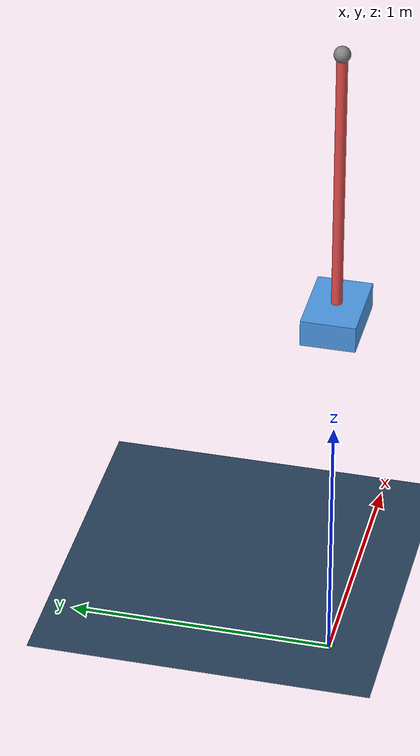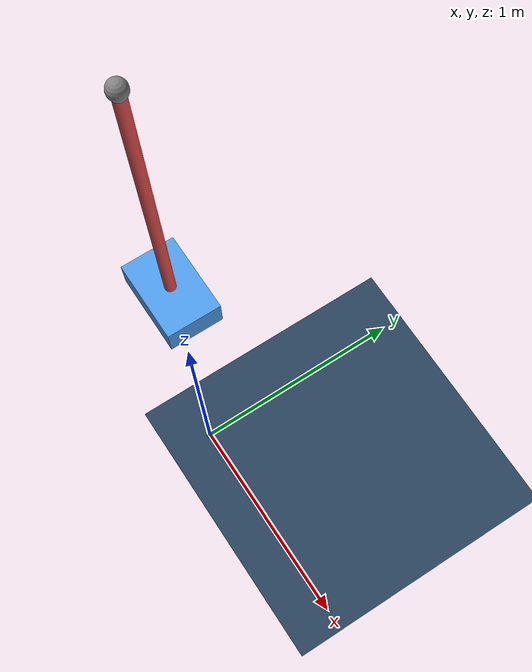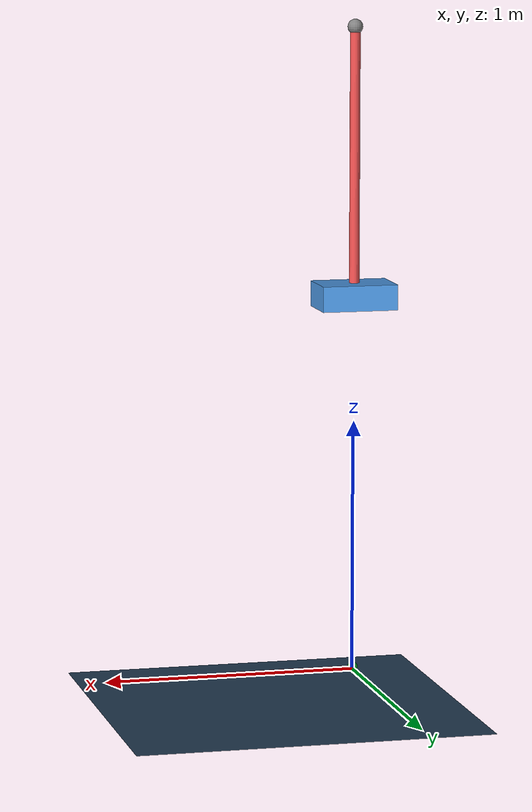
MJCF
<mujoco model="cartpole_scene_real">
  <compiler angle="radian" coordinate="local"/>

  <option timestep="0.001" gravity="0 0 -9.81">
    <flag warmstart="enable"/>
  </option>

  <visual>
    <global offwidth="1280" offheight="720"/>
    <quality shadowsize="4096"/>
    <map force="0.1" fogstart="3" fogend="5" zfar="30"/>
    <headlight diffuse="0.6 0.6 0.6" ambient="0.3 0.3 0.3" specular="0 0 0"/>
    <rgba haze="0.15 0.25 0.35 1"/>
  </visual>

  <asset>
    <texture name="grid" type="2d" builtin="checker" width="512" height="512" rgb1="0.2 0.2 0.2" rgb2="0.3 0.3 0.3"/>
    <material name="grid" texture="grid" texrepeat="1 1" texuniform="true" reflectance="0.2"/>
    <texture name="skybox" type="skybox" builtin="gradient" rgb1="0.3 0.5 0.7" rgb2="0.0 0.0 0.0" width="512" height="512"/>
    <texture type="2d" name="groundplane" builtin="checker" mark="edge" rgb1="0.2 0.3 0.4" rgb2="0.1 0.2 0.3"
      markrgb="0.8 0.8 0.8" width="300" height="300"/>
    <material name="groundplane" texture="groundplane" texuniform="true" texrepeat="5 5" reflectance="0.2"/>
  </asset>

  <default>
    <geom condim="3" contype="1" conaffinity="1" friction="1 0.5 0.5"/>
    <joint limited="true" damping="0.1"/>
    <motor ctrllimited="true"/>
  </default>

  <worldbody>
    <!-- Ground plane -->
    <light pos="0 0 1.5" dir="0 0 -1" directional="true"/>
    <geom name="floor" size="0 0 0.05" type="plane" material="groundplane"/>

    <!-- Lighting -->
    <light directional="true" diffuse="0.8 0.8 0.8" specular="0.2 0.2 0.2" pos="0 0 5" dir="0 0 -1"/>
    <light directional="true" diffuse="0.4 0.4 0.4" specular="0.1 0.1 0.1" pos="0 0 4" dir="0.3 0.3 -1"/>

    <!-- CartPole robot -->
    <body name="cart" pos="0 0 1.5">
      <inertial pos="0 0 0" mass="2.0" diaginertia="0.01 0.01 0.01"/>

      <!-- Cart slider joint -->
      <joint name="slider" type="slide" axis="1 0 0" range="-2 2" damping="0.1"/>
      <geom name="cart_geom" type="box" size="0.15 0.1 0.05" rgba="0.3 0.6 0.9 1"/>

      <!-- Pole body -->
      <body name="pole" pos="0 0 0.05">
        <inertial pos="0 0 0.5" mass="0.2" diaginertia="0.001 0.001 0.0001"/>

        <!-- Pole hinge joint -->
        <joint name="hinge" type="hinge" axis="0 1 0" limited="false" damping="0.01"/>
        <geom name="pole_geom" type="capsule" fromto="0 0 0 0 0 1.0" size="0.02" rgba="0.9 0.3 0.3 1"/>
        <site name="pole_tip" pos="0 0 1.0" size="0.03"/>
      </body>
    </body>

    <!-- Visual reference marks -->
    <body name="reference" pos="0 0 0.01">
      <geom name="origin" type="sphere" size="0.02" rgba="0 1 0 0.5" contype="0" conaffinity="0"/>
      <geom name="x_axis" type="cylinder" fromto="0 0 0 0.5 0 0" size="0.005" rgba="1 0 0 0.3" contype="0" conaffinity="0"/>
    </body>
  </worldbody>

  <actuator>
    <!-- Force actuator on cart slider -->
    <motor name="slide_force" joint="slider" gear="1" ctrllimited="true" ctrlrange="-5 5"/>
  </actuator>

  <sensor>
    <!-- Joint positions -->
    <jointpos name="cart_pos" joint="slider"/>
    <jointpos name="pole_angle" joint="hinge"/>

    <!-- Joint velocities -->
    <jointvel name="cart_vel" joint="slider"/>
    <jointvel name="pole_anglevel" joint="hinge"/>

    <!-- Actuator force/torque -->
    <jointactuatorfrc name="cart_force" joint="slider"/>
  </sensor>
</mujoco>
